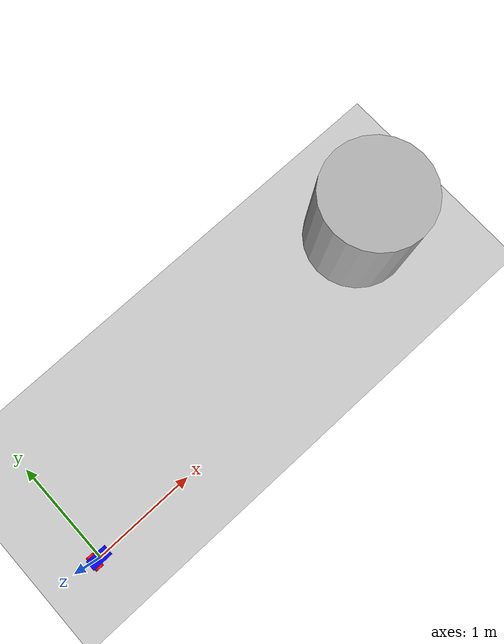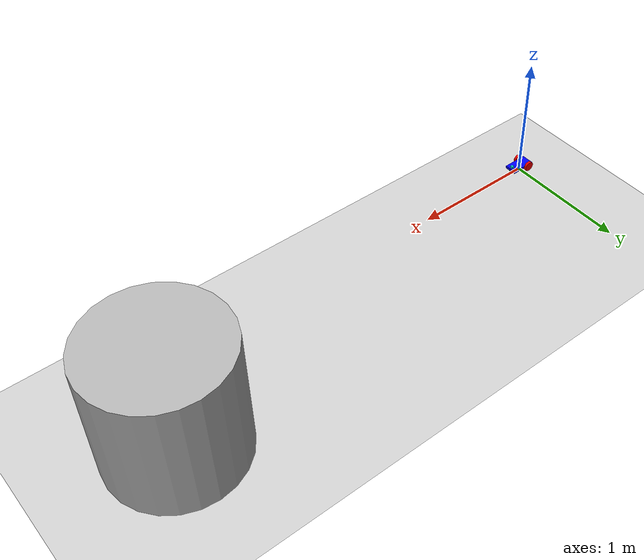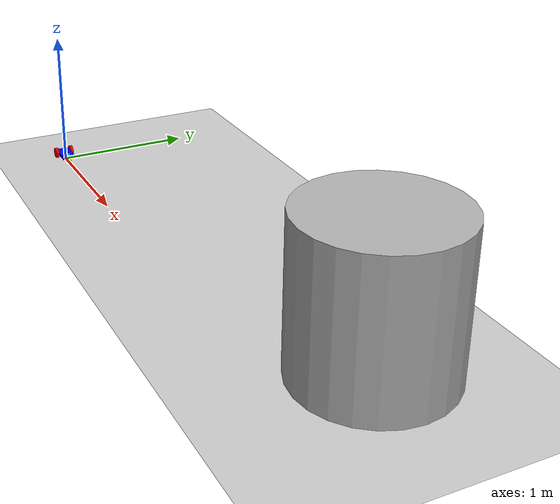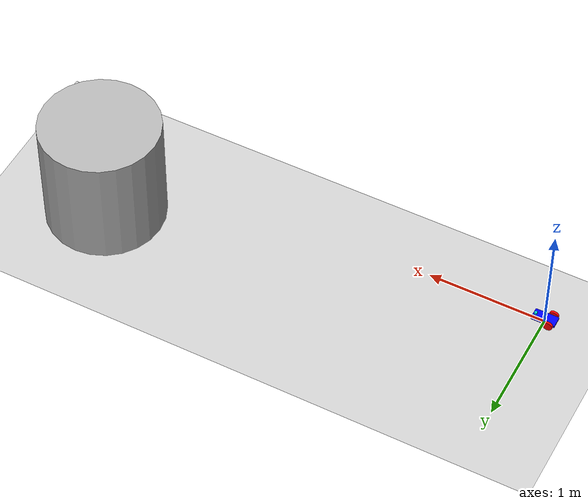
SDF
<sdf version='1.10'>
  <world name='demo'>
    <light name="sun" type="directional">
        <cast_shadows>true</cast_shadows>
        <pose>0 0 10 0 0 0</pose>
        <diffuse>0.8 0.8 0.8 1</diffuse>
        <specular>0.2 0.2 0.2 1</specular>
        <attenuation>
            <range>1000</range>
            <constant>0.9</constant>
            <linear>0.01</linear>
            <quadratic>0.001</quadratic>
        </attenuation>
        <direction>-0.5 0.1 -0.9</direction>
    </light>

    <model name="ground_plane">
        <static>true</static>
        <link name="link">
            <collision name="collision">
            <geometry>
                <plane>
                <normal>0 0 1</normal>
                <size>100 100</size>
                </plane>
            </geometry>
            </collision>
            <visual name="visual">
            <geometry>
                <plane>
                <normal>0 0 1</normal>
                <size>100 100</size>
                </plane>
            </geometry>
            <material>
                <ambient>0.8 0.8 0.8 1</ambient>
                <diffuse>0.8 0.8 0.8 1</diffuse>
                <specular>0.8 0.8 0.8 1</specular>
            </material>
            </visual>
        </link>
    </model>

    <model name="car">
        <self_collide>true</self_collide>
        <pose>0 0 0 0 0 0</pose>
        <include merge="true">
            <uri>car</uri>
        </include>

        <plugin
            filename="gz-sim-joint-state-publisher-system"
            name="gz::sim::systems::JointStatePublisher">
        </plugin>

        <plugin
            filename="gz-sim-pose-publisher-system"
            name="gz::sim::systems::PosePublisher">
            <publish_link_pose>true</publish_link_pose>
            <use_pose_vector_msg>true</use_pose_vector_msg>
            <static_publisher>true</static_publisher>
            <static_update_frequency>1</static_update_frequency>
        </plugin>

        <plugin
            filename="gz-sim-odometry-publisher-system"
            name="gz::sim::systems::OdometryPublisher">
            <odom_frame>car/odom</odom_frame>
            <robot_base_frame>car</robot_base_frame>
        </plugin>
    </model>

    <model name='cylinder'>
      <pose>3.6377381486572022 0.59647090485501131 0.50000230332778128 -2.4238314644171034e-06 4.721874308813875e-06 0.0068698314626172039</pose>
      <link name='cylinder_link'>
        <inertial>
          <inertia>
            <ixx>0.14580000000000001</ixx>
            <ixy>0</ixy>
            <ixz>0</ixz>
            <iyy>0.14580000000000001</iyy>
            <iyz>0</iyz>
            <izz>0.125</izz>
          </inertia>
          <mass>1</mass>
          <pose>0 0 0 0 0 0</pose>
        </inertial>
        <collision name='cylinder_collision'>
          <geometry>
            <cylinder>
              <radius>0.5</radius>
              <length>1</length>
            </cylinder>
          </geometry>
          <surface>
            <friction>
              <ode/>
            </friction>
            <bounce/>
            <contact/>
          </surface>
        </collision>
        <visual name='cylinder_visual'>
          <geometry>
            <cylinder>
              <radius>0.5</radius>
              <length>1</length>
            </cylinder>
          </geometry>
          <material>
            <ambient>0.300000012 0.300000012 0.300000012 1</ambient>
            <diffuse>0.699999988 0.699999988 0.699999988 1</diffuse>
            <specular>1 1 1 1</specular>
          </material>
        </visual>
        <pose>0 0 0 0 0 0</pose>
        <enable_wind>false</enable_wind>
      </link>
      <static>false</static>
      <self_collide>false</self_collide>
    </model>
  </world>
</sdf>

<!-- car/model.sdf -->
<sdf version="1.11">
    <model name='car' canonical_link='chassis'>
        <!--chassis-->
        <link name='chassis'>
            <pose relative_to='__model__'>0 0 0.04 0 0 0</pose>
            <inertial>
                <mass>0.05</mass>
                <inertia>
                    <ixx>0.000168</ixx>
                    <ixy>0</ixy>
                    <ixz>0</ixz>
                    <iyy>0.000208</iyy>
                    <iyz>0</iyz>
                    <izz>0.0000433</izz>
                </inertia>
            </inertial>
            <visual name='visual'>
                <geometry>
                    <box>
                        <size>0.2 0.1 0.02</size>
                    </box>
                </geometry>
                <!--Color of the link-->
                <material>
                    <ambient>0.0 0.0 1 1</ambient>
                    <diffuse>0.0 0.0 1 1</diffuse>
                    <specular>0.0 0.0 1 1</specular>
                </material>
            </visual>
            <collision name='collision'>
                <geometry>
                    <box>
                        <size>0.2 0.1 0.02</size>
                    </box>
                </geometry>
            </collision>
        </link>

        <!--Left wheel-->
        <link name='left_wheel'>
            <pose relative_to="chassis">-0.05 0.06 0 -1.5707 0 0</pose> <!--angles are in radian-->
            <inertial>
                <mass>0.1</mass>
                <inertia>
                    <ixx>0.0000516</ixx>
                    <ixy>0</ixy>
                    <ixz>0</ixz>
                    <iyy>0.0000516</iyy>
                    <iyz>0</iyz>
                    <izz>0.00005</izz>
                </inertia>
            </inertial>
            <visual name='visual'>
                <geometry>
                    <cylinder>
                        <radius>0.04</radius>
                        <length>0.02</length>
                    </cylinder>
                </geometry>
                <material>
                    <ambient>1.0 0.0 0.0 1</ambient>
                    <diffuse>1.0 0.0 0.0 1</diffuse>
                    <specular>1.0 0.0 0.0 1</specular>
                </material>
            </visual>
            <collision name='collision'>
                <geometry>
                    <cylinder>
                        <radius>0.04</radius>
                        <length>0.02</length>
                    </cylinder>
                </geometry>
            </collision>
        </link>

        <!--The same as left wheel but with different position-->
        <link name='right_wheel'>
            <pose relative_to="chassis">-0.05 -0.06 0 -1.5707 0 0</pose> <!--angles are in radian-->
            <inertial>
                <mass>0.1</mass>
                <inertia>
                    <ixx>0.0000516</ixx>
                    <ixy>0</ixy>
                    <ixz>0</ixz>
                    <iyy>0.0000516</iyy>
                    <iyz>0</iyz>
                    <izz>0.00005</izz>
                </inertia>
            </inertial>
            <visual name='visual'>
                <geometry>
                    <cylinder>
                        <radius>0.04</radius>
                        <length>0.02</length>
                    </cylinder>
                </geometry>
                <material>
                    <ambient>1.0 0.0 0.0 1</ambient>
                    <diffuse>1.0 0.0 0.0 1</diffuse>
                    <specular>1.0 0.0 0.0 1</specular>
                </material>
            </visual>
            <collision name='collision'>
                <geometry>
                    <cylinder>
                        <radius>0.04</radius>
                        <length>0.02</length>
                    </cylinder>
                </geometry>
            </collision>
        </link>

        <!--arbitrary frame-->
        <frame name="caster_frame" attached_to='chassis'>
            <pose relative_to='chassis'>0.08 0 -0.02 0 0 0</pose>
        </frame>

        <!--caster wheel-->
        <link name='caster'>
            <pose relative_to='caster_frame'/>
            <inertial>
                <mass>0.05</mass>
                <inertia>
                    <ixx>0.0000008</ixx>
                    <ixy>0</ixy>
                    <ixz>0</ixz>
                    <iyy>0.0000008</iyy>
                    <iyz>0</iyz>
                    <izz>0.0000008</izz>
                </inertia>
            </inertial>
            <visual name='visual'>
                <geometry>
                    <sphere>
                        <radius>0.02</radius>
                    </sphere>
                </geometry>
                <material>
                    <ambient>0.0 1 0.0 1</ambient>
                    <diffuse>0.0 1 0.0 1</diffuse>
                    <specular>0.0 1 0.0 1</specular>
                </material>
            </visual>
            <collision name='collision'>
                <geometry>
                    <sphere>
                        <radius>0.02</radius>
                    </sphere>
                </geometry>
            </collision>
        </link>

        <!--left wheel joint-->
        <joint name='left_wheel_joint' type='revolute'>
            <pose relative_to='left_wheel'/>
            <parent>chassis</parent>
            <child>left_wheel</child>
            <axis>
                <xyz expressed_in='__model__'>0 1 0</xyz> <!--can be descired to any frame or even arbitrary frames-->
                <limit>
                    <lower>-1.79769e+308</lower>    <!--negative infinity-->
                    <upper>1.79769e+308</upper>     <!--positive infinity-->
                </limit>
            </axis>
        </joint>

        <!--right wheel joint-->
        <joint name='right_wheel_joint' type='revolute'>
            <pose relative_to='right_wheel'/>
            <parent>chassis</parent>
            <child>right_wheel</child>
            <axis>
                <xyz expressed_in='__model__'>0 1 0</xyz>
                <limit>
                    <lower>-1.79769e+308</lower>    <!--negative infinity-->
                    <upper>1.79769e+308</upper>     <!--positive infinity-->
                </limit>
            </axis>
        </joint>

        <!--caster wheel joint--> <!--pose defult value is the child-->
        <joint name='caster_joint' type='ball'>
            <parent>chassis</parent>
            <child>caster</child>
        </joint>

        <plugin filename="gz-sim-diff-drive-system" name="gz::sim::systems::DiffDrive">
            <left_joint>left_wheel_joint</left_joint>
            <right_joint>right_wheel_joint</right_joint>
            <wheel_separation>0.12</wheel_separation>
            <wheel_radius>0.04</wheel_radius>
            <odom_publish_frequency>1</odom_publish_frequency>
        </plugin>

        <plugin filename="gz-sim-sensors-system" name="gz::sim::systems::Sensors">
            <render_engine>ogre2</render_engine>
        </plugin>

        <link name="rgbd_frame">
            <pose relative_to="sensor">0.02 0 0 0 0 0</pose>
        </link>

        <link name="lidar_frame">
            <pose relative_to="sensor">0 0 0.05 0 0 0</pose>
        </link>

        <link name="sensor">
            <pose relative_to='chassis'>0.08 0 0.02 0 0 0</pose>
            <inertial auto="true">
                <density>1</density>
            </inertial>
            <collision name="collisional">
                <geometry>
                    <box>
                        <size>0.02 0.02 0.02</size>
                    </box>
                </geometry>
            </collision>
            <visual name="visual1">
                <geometry>
                    <box>
                        <size>0.02 0.02 0.02</size>
                    </box>
                </geometry>
                <material>
                    <ambient>0.0 1.0 1.0 1</ambient>
                    <diffuse>0.0 1.0 1.0 1</diffuse>
                    <specular>0.0 1.0 1.0 1</specular>
                </material>
            </visual>

            <sensor name="rgbd" type="rgbd_camera">
                <camera>
                    <optical_frame_id>car/rgbd_frame</optical_frame_id>
                    <horizontal_fov>1.047</horizontal_fov>
                    <image>
                    <width>320</width>
                    <height>240</height>
                    </image>
                    <clip>
                    <near>0.1</near>
                    <far>100</far>
                    </clip>
                </camera>
                <always_on>1</always_on>
                <update_rate>30</update_rate>
                <visualize>true</visualize>
                <topic>model/car/sensor/rgbd</topic>
                <enable_metrics>true</enable_metrics>
            </sensor>

            <sensor name='lidar' type='gpu_lidar'>"
                <!-- 这条位姿为实际雷达位置 -->
                <pose relative_to="sensor">0 0 0.05 0 0 0</pose>
                <gz_frame_id>car/lidar_frame</gz_frame_id>
                <topic>model/car/sensor/lidar</topic>
                <update_rate>5</update_rate>
                <ray>
                    <scan>
                        <horizontal>
                            <samples>360</samples>
                            <resolution>1</resolution>
                            <min_angle>0.0</min_angle>
                            <max_angle>6.28</max_angle>
                        </horizontal>
                    </scan>
                    <range>
                        <min>0.12</min>
                        <max>3.5</max>
                        <resolution>0.015</resolution>
                    </range>
                </ray>
                <always_on>1</always_on>
                <visualize>true</visualize>
            </sensor>
        </link>

        <joint name="sensor_joint" type="fixed">
            <parent>chassis</parent>
            <child>sensor</child>
        </joint>

        <joint name="rgbd_joint" type="fixed">
            <parent>sensor</parent>
            <child>rgbd_frame</child>
        </joint>

        <joint name="lidar_joint" type="fixed">
            <parent>sensor</parent>
            <child>lidar_frame</child>
        </joint>

    </model>
</sdf>
